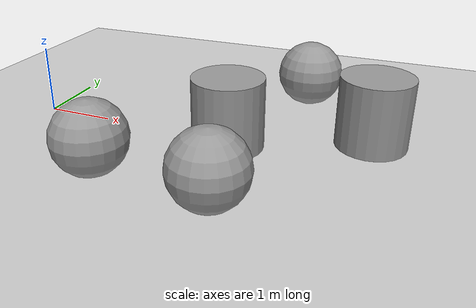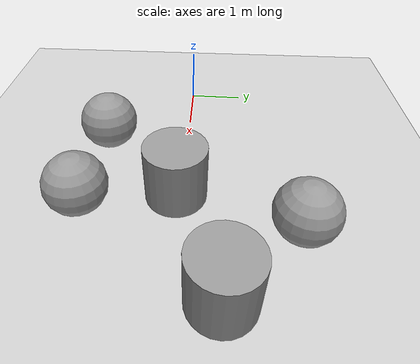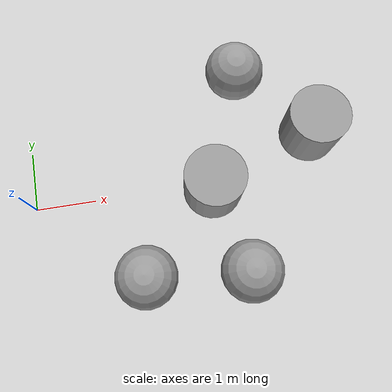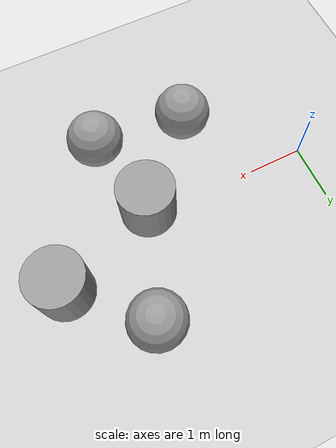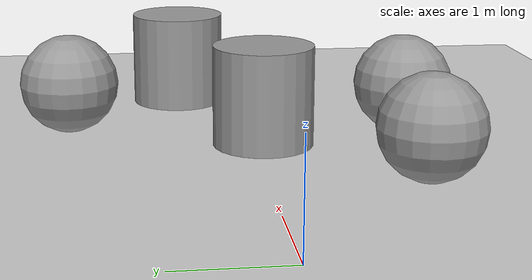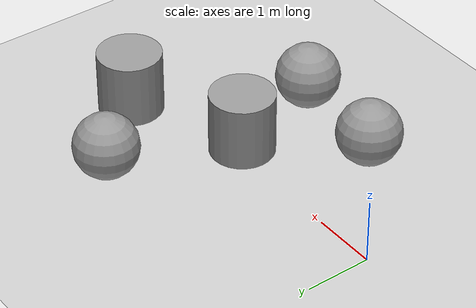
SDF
<sdf version="1.7">
 <world name="default">
  <light name="sun" type="directional">
   <pose>0 0 10 0 -0 0</pose>
   <diffuse>0.8 0.8 0.8 1</diffuse>
   <specular>0.2 0.2 0.2 1</specular>
   <attenuation>
    <range>1000</range>
    <constant>0.9</constant>
    <linear>0.01</linear>
    <quadratic>0.001</quadratic>
   </attenuation>
   <direction>-0.5 0.1 -0.9</direction>
   <spot><inner_angle>0</inner_angle><outer_angle>0</outer_angle><falloff>0</falloff></spot>
  </light>
  <model name="ground_plane">
   <static>1</static>
   <link name="link">
    <collision name="collision">
     <geometry><plane><normal>0 0 1</normal><size>100 100</size></plane></geometry>
     <surface><friction><ode><mu>100</mu><mu2>50</mu2></ode></friction></surface>
    </collision>
    <visual name="visual">
     <cast_shadows>0</cast_shadows>
     <geometry><plane><normal>0 0 1</normal><size>100 100</size></plane></geometry>
     <material>
      <script><uri>file://media/materials/scripts/gazebo.material</uri><name>Gazebo/Grey</name></script>
     </material>
    </visual>
   </link>
  </model>
  <gravity>0 0 -9.8</gravity>
  <magnetic_field>6e-06 2.3e-05 -4.2e-05</magnetic_field>
  <atmosphere type="adiabatic"/>
  <physics type="ode">
   <max_step_size>0.001</max_step_size>
   <real_time_factor>1</real_time_factor>
   <real_time_update_rate>1000</real_time_update_rate>
  </physics>
  <scene><ambient>0.4 0.4 0.4 1</ambient><background>0.7 0.7 0.7 1</background><shadows>1</shadows></scene>
  <audio><device>default</device></audio>
  <spherical_coordinates>
   <surface_model>EARTH_WGS84</surface_model>
   <latitude_deg>0</latitude_deg>
   <longitude_deg>0</longitude_deg>
   <elevation>0</elevation>
   <heading_deg>0</heading_deg>
  </spherical_coordinates>
  <model name="unit_sphere">
   <pose>1.71838 -1.44279 0.5 0 -0 0</pose>
   <link name="link">
    <inertial>
     <mass>1</mass>
     <inertia><ixx>0.1</ixx><ixy>0</ixy><ixz>0</ixz><iyy>0.1</iyy><iyz>0</iyz><izz>0.1</izz></inertia>
    </inertial>
    <collision name="collision"><geometry><sphere><radius>0.5</radius></sphere></geometry></collision>
    <visual name="visual">
     <geometry><sphere><radius>0.5</radius></sphere></geometry>
     <material>
      <script><name>Gazebo/Grey</name><uri>file://media/materials/scripts/gazebo.material</uri></script>
     </material>
    </visual>
   </link>
  </model>
  <model name="unit_cylinder">
   <pose>3.02244 -0.118032 0.499997 3e-06 4e-06 -0</pose>
   <link name="link">
    <inertial>
     <mass>1</mass>
     <inertia><ixx>0.145833</ixx><ixy>0</ixy><ixz>0</ixz><iyy>0.145833</iyy><iyz>0</iyz><izz>0.125</izz></inertia>
    </inertial>
    <collision name="collision">
     <geometry><cylinder><radius>0.5</radius><length>1</length></cylinder></geometry>
    </collision>
    <visual name="visual">
     <geometry><cylinder><radius>0.5</radius><length>1</length></cylinder></geometry>
     <material>
      <script><name>Gazebo/Grey</name><uri>file://media/materials/scripts/gazebo.material</uri></script>
     </material>
    </visual>
   </link>
  </model>
  <model name="unit_sphere_0">
   <pose>3.71334 1.79952 0.5 0 -0 0</pose>
   <link name="link">
    <inertial>
     <mass>1</mass>
     <inertia><ixx>0.1</ixx><ixy>0</ixy><ixz>0</ixz><iyy>0.1</iyy><iyz>0</iyz><izz>0.1</izz></inertia>
    </inertial>
    <collision name="collision"><geometry><sphere><radius>0.5</radius></sphere></geometry></collision>
    <visual name="visual">
     <geometry><sphere><radius>0.5</radius></sphere></geometry>
     <material>
      <script><name>Gazebo/Grey</name><uri>file://media/materials/scripts/gazebo.material</uri></script>
     </material>
    </visual>
   </link>
  </model>
  <model name="unit_sphere_1">
   <pose>3.36924 -1.6096 0.5 0 -0 0</pose>
   <link name="link">
    <inertial>
     <mass>1</mass>
     <inertia><ixx>0.1</ixx><ixy>0</ixy><ixz>0</ixz><iyy>0.1</iyy><iyz>0</iyz><izz>0.1</izz></inertia>
    </inertial>
    <collision name="collision"><geometry><sphere><radius>0.5</radius></sphere></geometry></collision>
    <visual name="visual">
     <geometry><sphere><radius>0.5</radius></sphere></geometry>
     <material>
      <script><name>Gazebo/Grey</name><uri>file://media/materials/scripts/gazebo.material</uri></script>
     </material>
    </visual>
   </link>
  </model>
  <model name="unit_cylinder_0">
   <pose>4.86165 0.616548 0.499997 3e-06 4e-06 -0</pose>
   <link name="link">
    <inertial>
     <mass>1</mass>
     <inertia><ixx>0.145833</ixx><ixy>0</ixy><ixz>0</ixz><iyy>0.145833</iyy><iyz>0</iyz><izz>0.125</izz></inertia>
    </inertial>
    <collision name="collision">
     <geometry><cylinder><radius>0.5</radius><length>1</length></cylinder></geometry>
    </collision>
    <visual name="visual">
     <geometry><cylinder><radius>0.5</radius><length>1</length></cylinder></geometry>
     <material>
      <script><name>Gazebo/Grey</name><uri>file://media/materials/scripts/gazebo.material</uri></script>
     </material>
    </visual>
   </link>
  </model>
 </world>
</sdf>
